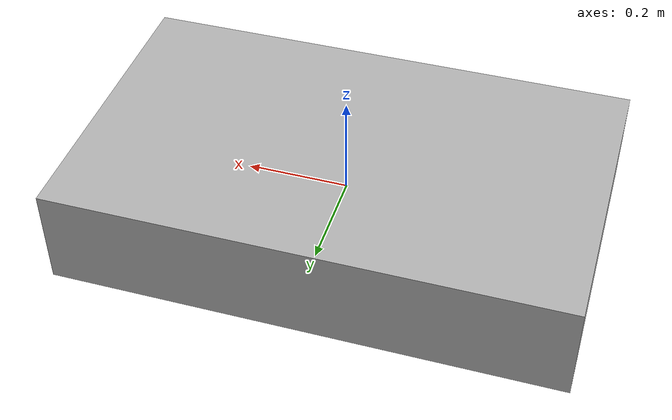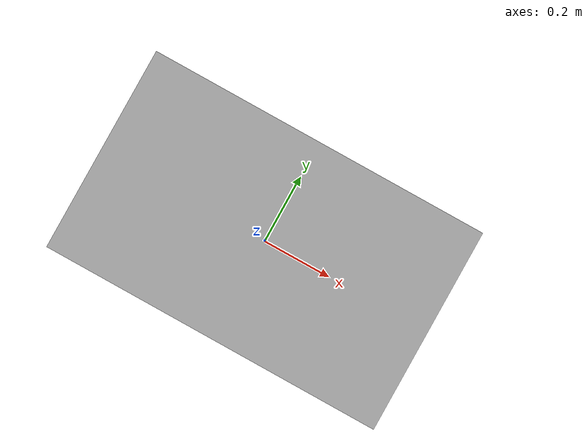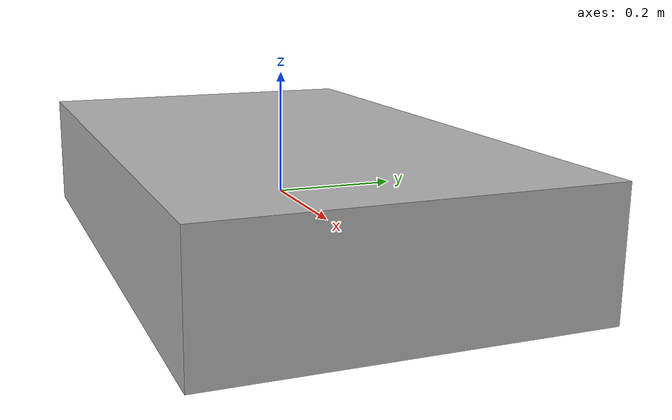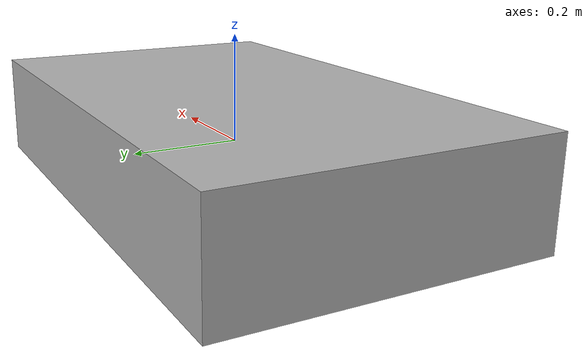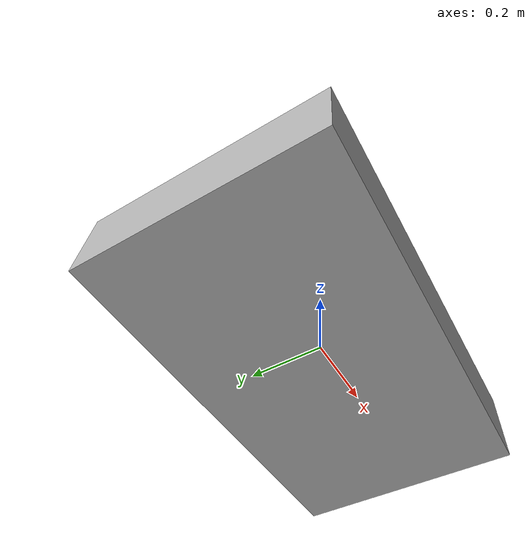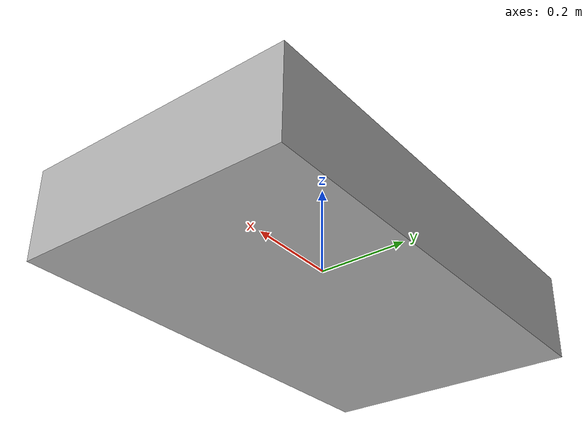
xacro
<?xml version="1.0"?>
<robot name="test_robot_combined" xmlns:xacro="http://www.ros.org/wiki/xacro">

  <!-- Define arguments -->
  <xacro:arg name="robot_name" default="my_robot"/>
  <xacro:arg name="base_width" default="0.6"/>
  <xacro:arg name="base_length" default="1.0"/>

  <!-- Properties using both arguments and environment variables -->
  <xacro:property name="robot_prefix" value="$(optenv ROBOT_PREFIX default)"/>
  <xacro:property name="mesh_path" value="$(optenv MESH_PATH /meshes)"/>

  <!-- Base link -->
  <link name="$(arg robot_name)_${robot_prefix}_base">
    <visual>
      <geometry>
        <box size="$(arg base_length) $(arg base_width) 0.2"/>
      </geometry>
      <material name="base_material">
        <color rgba="0.7 0.7 0.7 1.0"/>
      </material>
    </visual>
  </link>

</robot>
